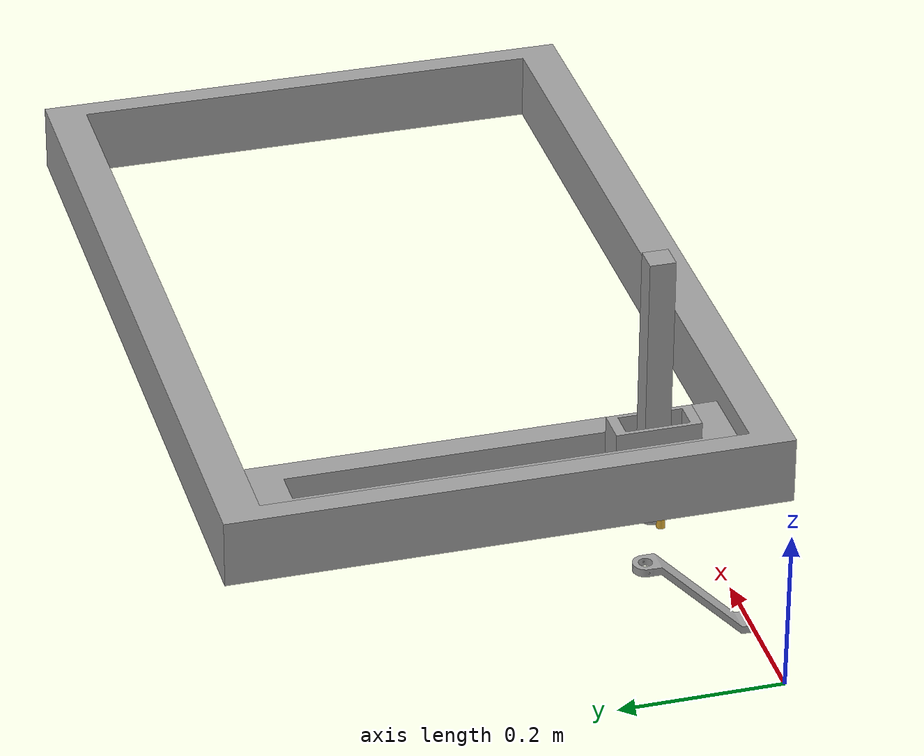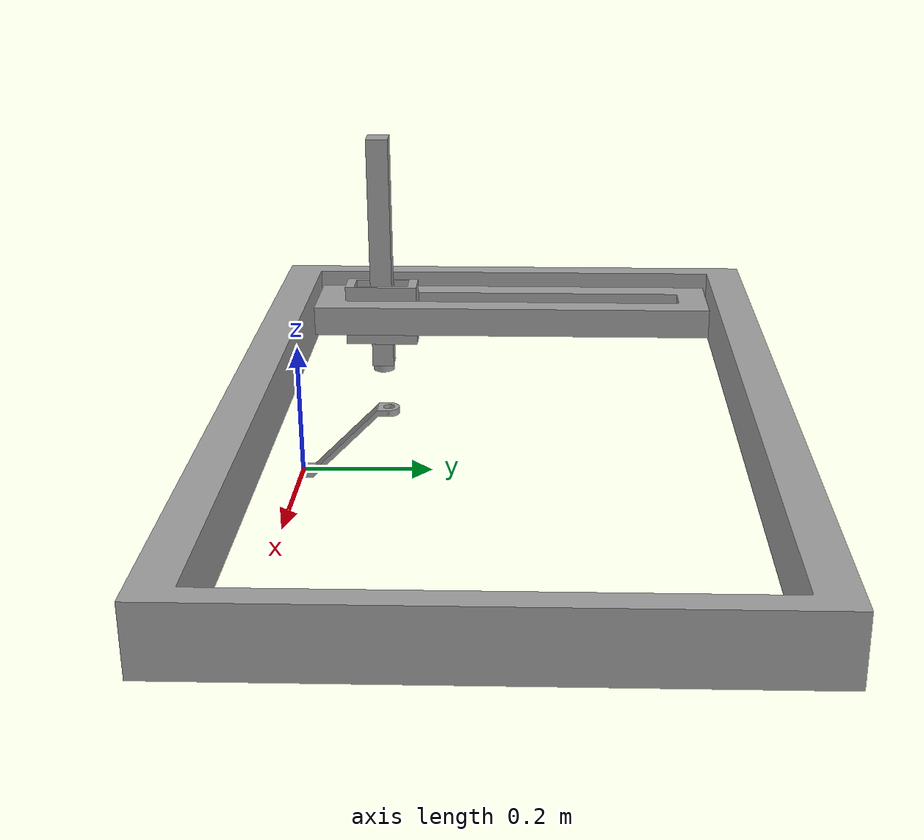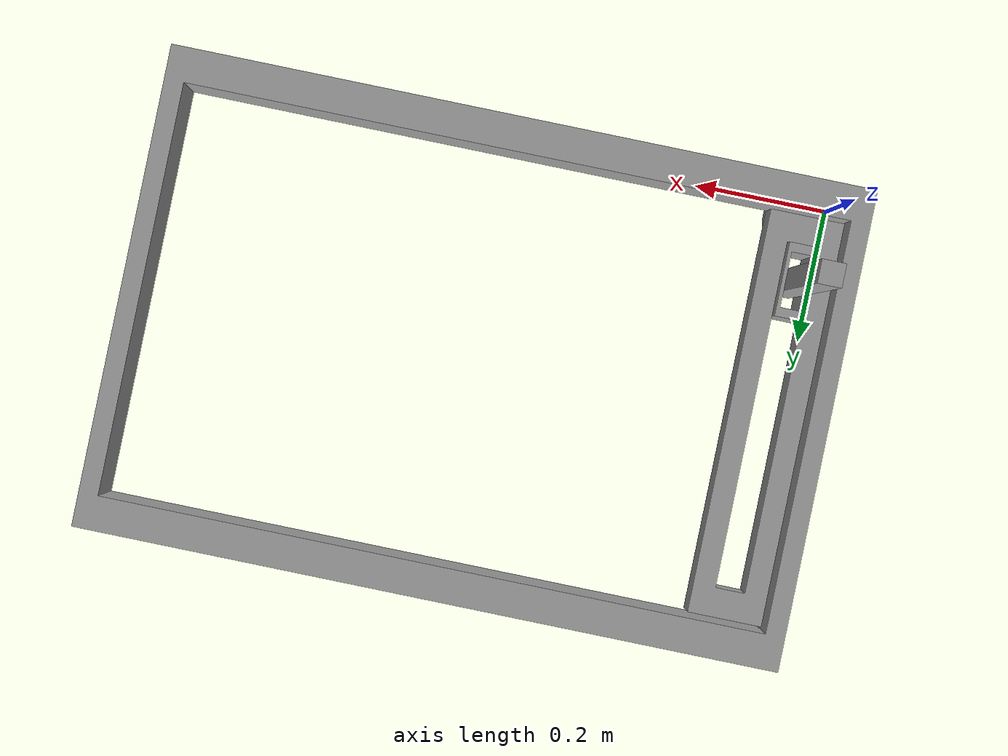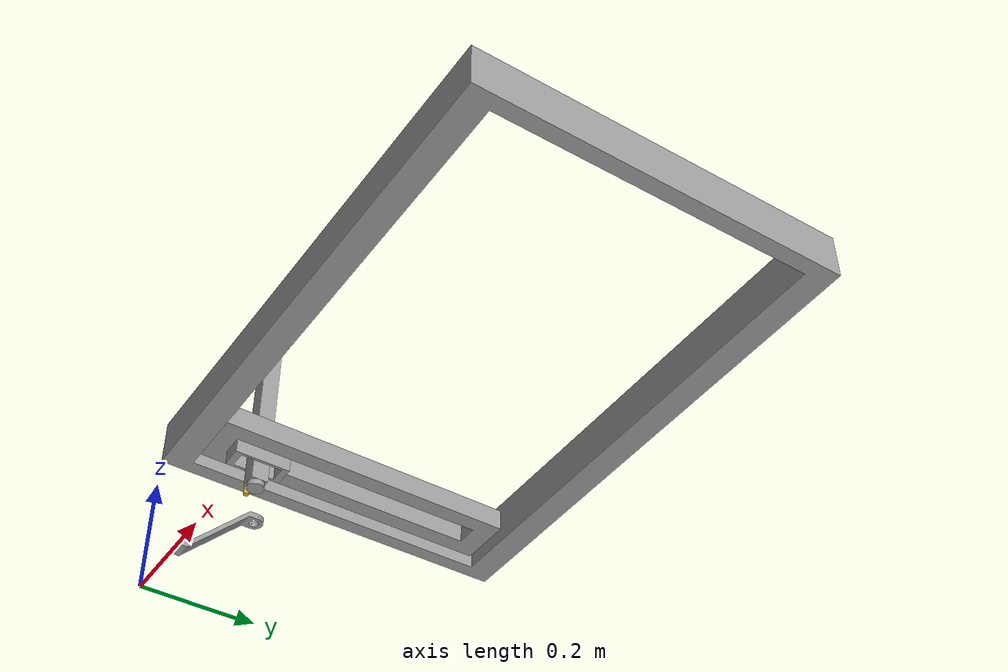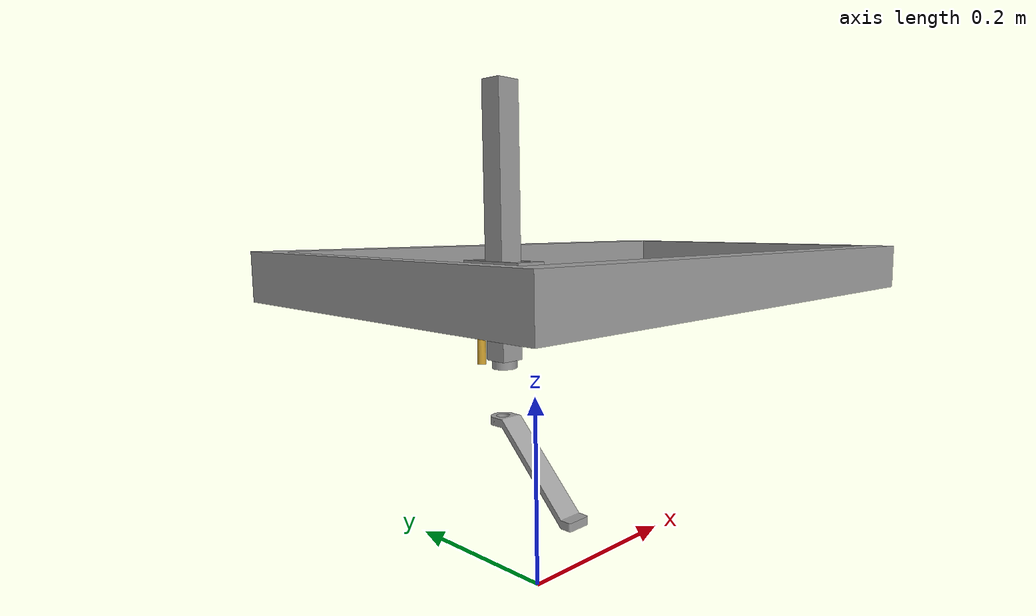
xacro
<?xml version="1.0" encoding="utf-8"?>
<robot xmlns:xacro="http://www.ros.org/wiki/xacro" name="cartesian_positioner">

  <xacro:arg name="sim" default="false" />
  <xacro:arg name="odrive_serial_xa" default="366338643030" />
  <xacro:arg name="odrive_serial_yz" default="207D37815753" />
  <xacro:arg name="a_axis_offset" default="0" />

  <link name="root_link"/>

  <link
    name="base_link">
    <inertial>
      <origin
        xyz="0.545 0.21 0.015"
        rpy="0 0 0" />
      <mass
        value="2.61" />
      <inertia
        ixx="0.08194635"
        ixy="5.20738915312999E-17"
        ixz="2.57356843807431E-19"
        iyy="0.3765219"
        iyz="-1.969633946682E-18"
        izz="0.45807675" />
    </inertial>
    <visual>
      <origin
        xyz="0 0 0"
        rpy="0 0 0" />
      <geometry>
        <mesh
          filename="package://cartesian_positioner_description/meshes/base_link.STL" scale="0.874 1.549 2.666"/>
      </geometry>
      <material
        name="">
        <color
          rgba="0.627450980392157 0.627450980392157 0.627450980392157 1" />
      </material>
    </visual>
    <collision>
      <origin
        xyz="0 0 0"
        rpy="0 0 0" />
      <geometry>
        <mesh
          filename="package://cartesian_positioner_description/meshes/base_link.STL" scale="0.874 1.549 2.666" />
      </geometry>
    </collision>
  </link>
  <joint
    name="root_joint"
    type="fixed">
    <origin
      xyz="0 0 0.25"
      rpy="0 0 0" />
    <parent
      link="root_link" />
    <child
      link="base_link" />
  </joint>
  <link
    name="x_stage">
    <inertial>
      <origin
        xyz="0.0500000000000001 0.21 -0.015"
        rpy="0 0 0" />
      <mass
        value="0.828000000000002" />
      <inertia
        ixx="0.0139185"
        ixy="7.55023665839396E-19"
        ixz="5.64688631502863E-21"
        iyy="0.0010545"
        iyz="-1.159596928051E-19"
        izz="0.0148488" />
    </inertial>
    <visual>
      <origin
        xyz="0 0 0"
        rpy="0 0 0" />
      <geometry>
        <mesh
          filename="package://cartesian_positioner_description/meshes/x_stage.STL" scale="1 1.306 1.333"/>
      </geometry>
      <material
        name="">
        <color
          rgba="0.627450980392157 0.627450980392157 0.627450980392157 1" />
      </material>
    </visual>
    <collision>
      <origin
        xyz="0 0 0"
        rpy="0 0 0" />
      <geometry>
        <mesh
          filename="package://cartesian_positioner_description/meshes/x_stage.STL" scale="1 1.306 1.333"/>
      </geometry>
    </collision>
  </link>
  <joint
    name="x_joint_plan"
    type="prismatic">
    <origin
      xyz="0.03 0.05 0.06"
      rpy="0 0 0" />
    <parent
      link="base_link" />
    <child
      link="x_stage" />
    <axis
      xyz="1 0 0" />
    <limit
      lower="0"
      upper="0.750"
      effort="100"
      velocity="1" />
  </joint>
  <joint
  name="x_joint_comp"
  type="prismatic">
  <origin
    xyz="0.03 0.05 0.06"
    rpy="0 0 0" />
  <parent
    link="base_link" />
  <child
    link="virtual_link_comp" />
  <axis
    xyz="1 0 0" />
  <limit
    lower="-10"
    upper="10"
    effort="100"
    velocity="1" />
  </joint>
  <link name="virtual_link_comp"/>
  <link
    name="y_stage">
    <inertial>
      <origin
        xyz="0.02 0.02 -0.015"
        rpy="0 0 0" />
      <mass
        value="0.021" />
      <inertia
        ixx="5.95000000000001E-06"
        ixy="-6.66644293297972E-22"
        ixz="-2.48154183766091E-24"
        iyy="5.95000000000001E-06"
        iyz="-7.76446868316441E-22"
        izz="8.75000000000002E-06" />
    </inertial>
    <visual>
      <origin
        xyz="0 0 0"
        rpy="0 0 0" />
      <geometry>
        <mesh
          filename="package://cartesian_positioner_description/meshes/y_stage.STL" scale="1 2.5 2.833"/>
      </geometry>
      <material
        name="">
        <color
          rgba="0.627450980392157 0.627450980392157 0.627450980392157 1" />
      </material>
    </visual>
    <collision>
      <origin
        xyz="0 0 0"
        rpy="0 0 0" />
      <geometry>
        <mesh
          filename="package://cartesian_positioner_description/meshes/y_stage.STL" scale="1 2.5 2.833"/>
      </geometry>
    </collision>
  </link>
  <joint
    name="y_joint"
    type="prismatic">
    <origin
      xyz="0.03 0.04 0.02"
      rpy="0 0 0" />
    <parent
      link="x_stage" />
    <child
      link="y_stage" />
    <axis
      xyz="0 1 0" />
    <limit
      lower="0"
      upper="0.36"
      effort="100"
      velocity="1" />
  </joint>
  <link
    name="z_stage">
    <inertial>
      <origin
        xyz="0.015 0.015 0.165"
        rpy="0 0 0" />
      <mass
        value="0.297" />
      <inertia
        ixx="0.00271755"
        ixy="2.53323837601238E-22"
        ixz="-8.81620763116716E-36"
        iyy="0.00271755"
        iyz="1.35525271560688E-20"
        izz="4.45500000000001E-05" />
    </inertial>
    <visual>
      <origin
        xyz="0 0 0"
        rpy="0 0 0" />
      <geometry>
        <mesh
          filename="package://cartesian_positioner_description/meshes/z_stage.STL" />
      </geometry>
      <material
        name="">
        <color
          rgba="0.627450980392157 0.627450980392157 0.627450980392157 1" />
      </material>
    </visual>
    <collision>
      <origin
        xyz="0 0 0"
        rpy="0 0 0" />
      <geometry>
        <mesh
          filename="package://cartesian_positioner_description/meshes/z_stage.STL" />
      </geometry>
    </collision>
  </link>
  <joint
    name="z_joint"
    type="prismatic">
    <origin
      xyz="0.005 0.035 -0.12"
      rpy="0 0 0" />
    <parent
      link="y_stage" />
    <child
      link="z_stage" />
    <axis
      xyz="0 0 -1" />
    <limit
      lower="0"
      upper="0.25"
      effort="100"
      velocity="1" />
  </joint>

  <link name="laser">
    <visual>
      <origin xyz="0 0 0.02" rpy="0 0 0"/>
      <geometry>
        <cylinder radius="0.005" length="0.04"/>
      </geometry>
      <material name="gold">
        <color rgba="0.86 0.67 0.20 1.0"/>
      </material>
    </visual>
    <collision>
      <origin xyz="0 0 0.02" rpy="0 0 0"/>
      <geometry>
        <cylinder radius="0.005" length="0.04"/>
      </geometry>
    </collision>
  </link>

  <joint
    name="laser_joint"
    type="fixed">
  <origin
      xyz="-0.020 0.015 0.0"
      rpy="0 0 0" />
    <parent
      link="z_stage" />
    <child
      link="laser" />
  </joint>

  <link
    name="a_stage">
    <inertial>
      <origin
        xyz="5.55111512312578E-17 -1.38777878078145E-17 0.005"
        rpy="0 0 0" />
      <mass
        value="0.00706858347057704" />
      <inertia
        ixx="4.56512682474767E-07"
        ixy="-8.7672286998829E-38"
        ixz="7.62082778666612E-39"
        iyy="4.56512682474767E-07"
        iyz="1.26517267465749E-24"
        izz="7.95215640439917E-07" />
    </inertial>
    <visual>
      <origin
        xyz="0 0 0"
        rpy="0 0 0" />
      <geometry>
        <mesh
          filename="package://cartesian_positioner_description/meshes/a_stage.STL" />
      </geometry>
      <material
        name="">
        <color
          rgba="0.627450980392157 0.627450980392157 0.627450980392157 1" />
      </material>
    </visual>
    <collision>
      <origin
        xyz="0 0 0"
        rpy="0 0 0" />
      <geometry>
        <mesh
          filename="package://cartesian_positioner_description/meshes/a_stage.STL" />
      </geometry>
    </collision>
  </link>
  <joint
    name="a_joint"
    type="revolute">
    <origin
      xyz="0.0149999999999996 0.015 -0.0100000000000001"
      rpy="0 0 $(arg a_axis_offset)" />
    <parent
      link="z_stage" />
    <child
      link="a_stage" />
    <axis
      xyz="0 0 -1" />
    <limit
      lower="-4.7124"
      upper="4.7124"
      effort="100"
      velocity="10" />
  </joint>
  <link
    name="tool">
    <inertial>
      <origin
        xyz="-1.52193926405975E-07 0.0530606506441713 0.0623032894021041"
        rpy="0 0 0" />
      <mass
        value="0.147757758583212" />
      <inertia
        ixx="0.00034328202256601"
        ixy="-1.09719380453623E-09"
        ixz="-9.14516377462814E-10"
        iyy="0.000183483007523239"
        iyz="-0.000160724714580781"
        izz="0.000181664808320788" />
    </inertial>
    <visual>
      <origin
        xyz="-0.015 -0.009 -0.004"
        rpy="1.57 0 1.57" />
      <geometry>
        <mesh
          filename="package://cartesian_positioner_description/meshes/tool.STL" scale="0.001 0.001 0.001"/>
      </geometry>
      <material
        name="">
        <color
          rgba="0.627450980392157 0.627450980392157 0.627450980392157 1" />
      </material>
    </visual>
    <collision>
      <origin
        xyz="-0.015 -0.009 -0.004"
        rpy="1.57 0 1.57" />
      <geometry>
        <mesh
          filename="package://cartesian_positioner_description/meshes/tool.STL" scale="0.001 0.001 0.001" />
      </geometry>
    </collision>
  </link>
  <joint
    name="tool_joint"
    type="fixed">
    <origin
      xyz="0 -0.115 -0.165"
      rpy="0 0 0" />
    <parent
      link="a_stage" />
    <child
      link="tool" />
    <axis
      xyz="0 0 0" />
  </joint>

  <ros2_control name="TBot_positioner" type="system">
    <hardware>
      <xacro:unless value="$(arg sim)">
        <plugin>odrive_hardware_interface/ODriveHardwareInterface</plugin>
      </xacro:unless>
      <xacro:if value="$(arg sim)">
        <plugin>fake_components/GenericSystem</plugin>
      </xacro:if>
    </hardware>
    <sensor name="odrv0">
        <param name="serial_number">$(arg odrive_serial_yz)</param>
    </sensor>

    <joint name="y_joint">
      <param name="serial_number">$(arg odrive_serial_yz)</param>
      <param name="axis">0</param>
      <param name="enable_watchdog">0</param>
      <param name="watchdog_timeout">0.1</param>
      <command_interface name="position"/>
      <state_interface name="position"/>
      <state_interface name="velocity"/>|
    </joint>

    <joint name="z_joint">
      <param name="serial_number">$(arg odrive_serial_yz)</param>
      <param name="axis">1</param>
      <param name="enable_watchdog">0</param>
      <param name="watchdog_timeout">0.1</param>
      <command_interface name="position"/>
      <state_interface name="position"/>
      <state_interface name="velocity"/>|
    </joint>

    <transmission name="transmission1">
      <plugin>TBotTransmission</plugin>
      <actuator name="motor1" role="actuator1"/>
      <joint name="y_joint" role="joint1">
        <offset>0.0</offset>
        <mechanical_reduction>80.0</mechanical_reduction>
      </joint>
      <actuator name="motor2" role="actuator2"/>
      <joint name="z_joint" role="joint2">
        <offset>0.0</offset>
        <mechanical_reduction>80.0</mechanical_reduction>
      </joint>
    </transmission>
  </ros2_control>

  <ros2_control name="xa_positioner" type="system">
    <hardware>
      <xacro:unless value="$(arg sim)">
        <plugin>odrive_hardware_interface/ODriveHardwareInterface</plugin>
      </xacro:unless>
      <xacro:if value="$(arg sim)">
        <plugin>fake_components/GenericSystem</plugin>
      </xacro:if>
    </hardware>

    <sensor name="odrv0">
      <param name="serial_number">$(arg odrive_serial_xa)</param>
    </sensor>
    <joint name="x_joint_plan">
      <param name="serial_number">$(arg odrive_serial_xa)</param>
      <param name="axis">0</param>
      <param name="enable_watchdog">0</param>
      <param name="watchdog_timeout">0.1</param>
      <command_interface name="position"/>
      <state_interface name="position"/>
      <state_interface name="velocity"/>
    </joint>

    <joint name="x_joint_comp">
      <param name="serial_number">$(arg odrive_serial_xa)</param>
      <param name="axis">0</param>
      <param name="enable_watchdog">0</param>
      <param name="watchdog_timeout">0.1</param>
      <command_interface name="position"/>
      <state_interface name="position"/>
      <state_interface name="velocity"/>
    </joint>

    <joint name="a_joint">
      <param name="serial_number">$(arg odrive_serial_xa)</param>
      <param name="axis">1</param>
      <param name="enable_watchdog">0</param>
      <param name="watchdog_timeout">0.1</param>
      <command_interface name="position"/>
      <state_interface name="position"/>
      <state_interface name="velocity"/>
    </joint>

    <transmission name="AddTransmission">
      <plugin>AddTransmission</plugin>
      <actuator name="motor1" role="actuator1"/>
      <joint name="x_joint_plan" role="joint1">
        <mechanical_reduction>-160.0</mechanical_reduction>
        </joint>
      <joint name="x_joint_comp" role="joint2">
        <mechanical_reduction>-160.0</mechanical_reduction>
        </joint>
    </transmission>
  </ros2_control>
</robot>
